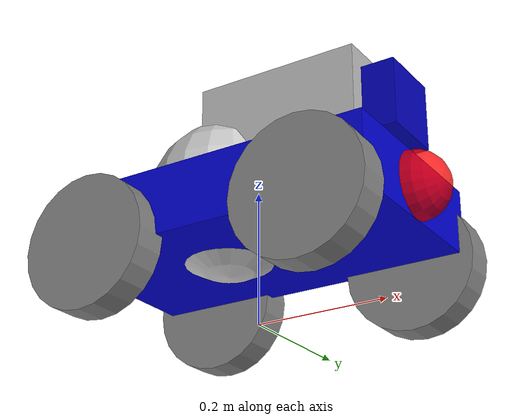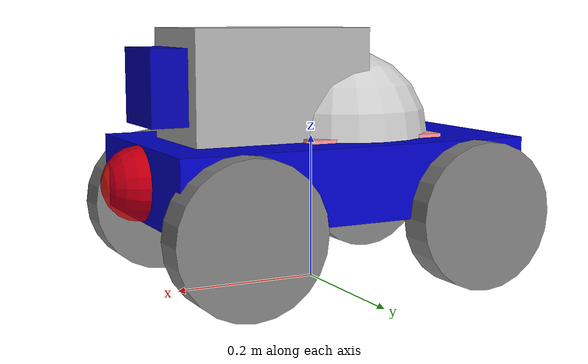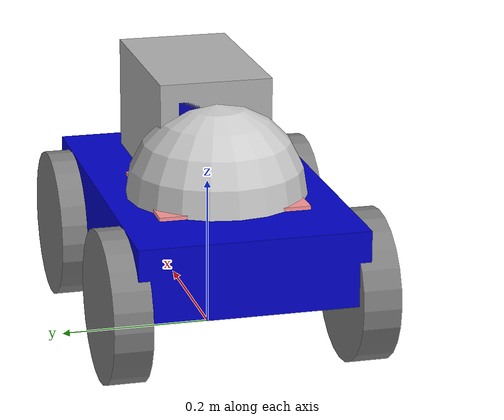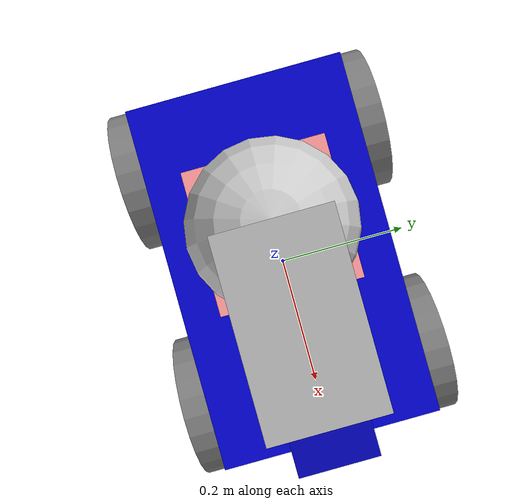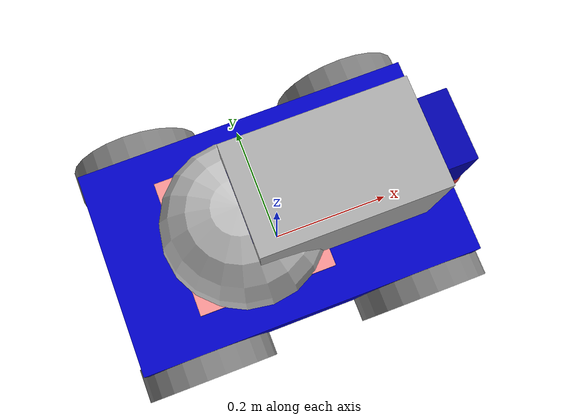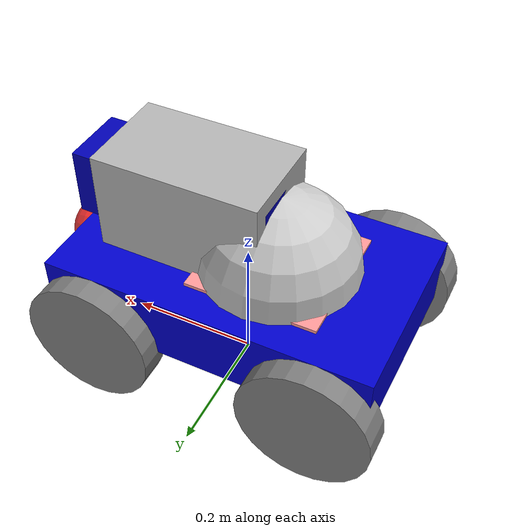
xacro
<?xml version="1.0"?>
<robot xmlns:xacro="http://www.ros.org/wiki/xacro" name="my_robot">
  <!-- 动态定位宏文件路径 -->
  <xacro:include filename="/home/sui/livox_mid360/src/my_robot/urdf/robot_body.urdf.xacro" />
  <xacro:include filename="/home/sui/livox_mid360/src/my_robot/urdf/robot_whell.urdf.xacro"/>
  <xacro:include filename="/home/sui/livox_mid360/src/my_robot/urdf/robot_arm_base.urdf.xacro"/>
  <xacro:include filename="/home/sui/livox_mid360/src/my_robot/urdf/robot_arm_1.urdf.xacro" />
  <xacro:include filename="/home/sui/livox_mid360/src/my_robot/urdf/sphere.urdf.xacro" />
  <xacro:include filename="/home/sui/livox_mid360/src/my_robot/urdf/robot_arm_2.urdf.xacro"/>
  <xacro:include filename="/home/sui/livox_mid360/src/my_robot/urdf/lader.urdf.xacro"/>

  <!-- 实例化机器人并传入参数 -->
  <xacro:rectangle_robot
      robot_name="base_link"
      length_para="0.5"
      width_para="0.3"
      height_para="0.1"
      mass_para="2.0"
  />

    <!-- 安装1左轮 -->
    <xacro:wheel_module
    radius="0.05"
    name="left_wheel1"
    width="0.03"
    parent_link="base_link"
     >

    <origin xyz="0.17 0.16 -0.05" rpy="0 0 0"/>
    </xacro:wheel_module>

    <!-- 安装2左轮 -->
    <xacro:wheel_module
    radius="0.05"
    name="left_wheel2"
    width="0.03"
    parent_link="base_link"
     >

    <origin xyz="-0.17 0.16 -0.05" rpy="0 0 0"/>
    </xacro:wheel_module>

    <!-- 安装1右边轮 -->
    <xacro:wheel_module
    radius="0.05"
    name="right_wheel1"
    width="0.03"
    parent_link="base_link"
     >

    <origin xyz="0.17 -0.16 -0.05" rpy="0 0 0"/>
    </xacro:wheel_module>

    <!-- 安装2右轮 -->
    <xacro:wheel_module
    radius="0.05"
    name="right_wheel2"
    width="0.03"
    parent_link="base_link"
    >
    <origin xyz="-0.17 -0.16 -0.05" rpy="0 0 0"/>
    </xacro:wheel_module>

    <!--安装机械臂底座  -->
     <xacro:fixed_square_module
      module_name="arm_base"
      side_length="0.2"
      height="0.01"
      parent="base_link">
      <origin xyz="-0.05 0 0.05" rpy="0 0 0"/>
    </xacro:fixed_square_module>

  <xacro:sphere_link name="marker" parent="arm_base" radius="0.12">
    <origin xyz="0 0 0" rpy="0 0 0" />
  </xacro:sphere_link>

   <!-- 安装机械臂下臂 -->
  <xacro:square_base_pillar name="arm1" base_length="0.15" height="0.25" parent_link="marker">
    <origin xyz="0 0 0.075" rpy="0 1.5708 0" />
  </xacro:square_base_pillar>

  <!-- name parent height base_side *origin color_rgba:=0.7 0.7 0.7 1" -->
  <xacro:square_base_box name="arm2" parent="arm1" height="0.3" base_side="0.1" >  <!--拉伸最长为0.2-->
    <origin xyz="0 0 0" rpy="0 0.0 0"/>
  </xacro:square_base_box>

  <xacro:sphere_radar name="lader" radius="0.05" parent="base_link">
    <origin xyz="0.25 0 0" rpy="0 1.5708 0"/>  <!-- 安装位置示例 -->
  </xacro:sphere_radar>
</robot>

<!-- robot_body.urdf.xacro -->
<robot xmlns:xacro="http://www.ros.org/wiki/xacro">
  <xacro:macro name="rectangle_robot" params="robot_name length_para:=0.2 width_para:=0.05 height_para:=0.03 mass_para:=0.5">

    <!-- 尺寸参数（支持外部传入） -->
    <xacro:property name="length" value="${length_para}" />
    <xacro:property name="width"  value="${width_para}" />
    <xacro:property name="height" value="${height_para}" />
    <xacro:property name="mass"   value="${mass_para}" />

    <link name="foot_footprint"/>

    <!-- 基础连杆（名称动态生成） -->
    <link name="${robot_name}">
      <!-- 视觉外观 -->
      <visual>
        <geometry>
          <box size="${length_para} ${width_para} ${height_para}"/>
        </geometry>

        <material name="blue">
          <color rgba="0 0 0.8 1"/>
        </material>
      </visual>

       <!-- 碰撞属性（必须与visual几何形状一致） -->
      <collision>
        <geometry>
          <box size="${length} ${width} ${height}"/>
        </geometry>
        <origin xyz="0 0 0" rpy="0 0 0"/>
        <!-- Gazebo仿真时碰撞检测会使用此属性 -->
      </collision>

      <!-- 精确惯性矩阵 -->
      <inertial>
        <mass value="${mass_para}"/>
        <inertia
          ixx="${mass_para*(height_para*height_para + length_para*length_para)/12}"
          ixy="0"
          ixz="0"
          iyy="${mass_para*(width_para*width_para + length_para*length_para)/12}"
          iyz="0"
          izz="${mass_para*(width_para*width_para + length_para*length_para)/12}"/>
      </inertial>
    </link>

    <!-- 连接虚拟部件 -->
    <joint name="${robot_name}_to_foot_joint_name" type="fixed">
      <origin xyz="0.0 0.0 0.15" rpy="0.0 0.0 0.0"/>
      <parent link="foot_footprint"/>
      <child link="${robot_name}"/>
    </joint>

     <!-- Gazebo颜色配置（可选） -->
    <gazebo reference="${robot_name}">
      <material>Gazebo/Blue</material>
    </gazebo>

</xacro:macro>
</robot>

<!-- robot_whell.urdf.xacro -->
<robot xmlns:xacro="http://www.ros.org/wiki/xacro">
  <xacro:macro name="wheel_module" params="radius name width parent_link *origin">
    <link name="${name}">
      <visual>
        <origin xyz="0 0 0" rpy="${math.pi/2} 0 0"/>

        <geometry>
          <cylinder radius="0.1" length="0.05"/>  <!-- 添加具体参数 -->
        </geometry>

        <material name="gray">
          <color rgba="0.5 0.5 0.5 1"/> <!-- 补充颜色定义 -->
        </material>

      </visual>

      <!-- 添加的碰撞属性（与visual几何形状一致） -->
      <collision>
        <origin xyz="0 0 0" rpy="${math.pi/2} 0 0"/>
        <geometry>
          <cylinder radius="0.1" length="0.05"/>
        </geometry>
      </collision>

      <!-- 添加的惯性矩阵（圆柱体公式） -->
      <inertial>
        <mass value="0.5"/>  <!-- 默认质量，建议通过参数传入 -->
        <inertia
          ixx="${0.5*(3 * 0.1 * 0.1 + 0.05 * 0.05)/12}"
          ixy="0"
          ixz="0"
          iyy="${0.5*(3 * 0.1 * 0.1 + 0.05 * 0.05)/12}"
          iyz="0"
          izz="${0.5 * 0.1 * 0.1/2}"/>
        <origin xyz="0 0 0" rpy="0 0 0"/>
      </inertial>
    </link>

    <joint name="${name}_joint" type="continuous">
      <parent link="${parent_link}"/>
      <child link="${name}"/>
      <xacro:insert_block name="origin"/>
      <axis xyz="0 1 0"/>
    </joint>

    <!-- Gazebo颜色配置（必须添加否则Gazebo中无颜色） -->
    <gazebo reference="${name}">
      <material>Gazebo/Grey</material>
    </gazebo>

  </xacro:macro>
</robot>

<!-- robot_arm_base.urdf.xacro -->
<robot xmlns:xacro="http://www.ros.org/wiki/xacro">

  <!-- 定义正方形模块的宏 -->
  <xacro:macro name="fixed_square_module" params="module_name side_length height parent *origin">
    <!-- 1. 定义正方形连杆(link) -->
    <link name="${module_name}">
      <visual>

        <geometry>
          <box size="${side_length} ${side_length} ${height}"/>
        </geometry>

        <material name="light_red">
          <color rgba="1 0.6 0.6 1"/>
        </material>

      </visual>

      <!-- 添加的碰撞属性（与visual几何形状一致） -->
      <collision>
        <geometry>
          <box size="${side_length} ${side_length} ${height}"/>
        </geometry>
        <origin xyz="0 0 0" rpy="0 0 0"/>
      </collision>

      <!-- 添加的惯性矩阵（长方体公式） -->
      <inertial>
        <mass value="0.5"/>  <!-- 默认质量，建议后续通过参数传入 -->
        <inertia
          ixx="${0.5*(height*height + side_length*side_length)/12}"
          ixy="0"
          ixz="0"
          iyy="${0.5*(side_length*side_length + side_length*side_length)/12}"
          iyz="0"
          izz="${0.5*(side_length*side_length + height*height)/12}"/>
        <origin xyz="0 0 0" rpy="0 0 0"/>
      </inertial>
    </link>

      <!-- 2. 固定关节(fixed joint)连接到父坐标系 -->
    <joint name="${module_name}_fixed_joint" type="fixed">
      <!-- 通过*origin传递位置参数 -->
      <xacro:insert_block name="origin"/>
      <parent link="${parent}"/>
      <child link="${module_name}"/>
    </joint>

    <!-- Gazebo颜色配置（必须添加否则Gazebo中无颜色） -->
    <gazebo reference="${module_name}">
      <material>Gazebo/Orange</material>  <!-- 使用与RVIZ相近的橙色 -->
    </gazebo>

  </xacro:macro>
</robot>

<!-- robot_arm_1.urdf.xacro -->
<robot xmlns:xacro="http://www.ros.org/wiki/xacro">
  <!-- 定义模块宏：可参数化的正方形底长方体柱子 -->
  <xacro:macro name="square_base_pillar" params="name base_length height parent_link *origin">
    <!-- 属性定义 -->
    <xacro:property name="mass" value="1.0" /> <!-- 默认质量 -->
    <xacro:property name="color_rgba" value="0.7 0.7 0.7 1" /> <!-- 默认灰色材质 -->

    <!-- 连杆定义 -->
    <link name="${name}">
      <!-- 视觉属性 -->
      <visual>
        <geometry>
          <box size="${base_length} ${base_length} ${height}" />
        </geometry>
        <origin xyz="0 0 ${height/2}" rpy="0 0 0" />
        <material name="${name}_color">
          <color rgba="${color_rgba}" />
        </material>
      </visual>

       <!-- 添加的碰撞属性（长方体） -->
      <collision>
        <geometry>
          <box size="${base_length} ${base_length} ${height}" />
        </geometry>
        <origin xyz="0 0 ${height/2}" rpy="0 0 0" />
      </collision>

      <!-- 添加的惯性矩阵（长方体公式） -->
      <inertial>
        <mass value="${mass}"/>
        <inertia
          ixx="${mass*(height*height + base_length*base_length)/12}"
          ixy="0"
          ixz="0"
          iyy="${mass*(base_length*base_length + base_length*base_length)/12}"
          iyz="0"
          izz="${mass*(base_length*base_length + height*height)/12}"/>
        <origin xyz="0 0 ${height/2}" rpy="0 0 0"/>
      </inertial>

    </link>

    <!-- 关节定义：绕Y轴旋转（0-180度限制） -->
    <joint name="${name}_joint" type="revolute">
      <xacro:insert_block name="origin" /> <!-- 通过宏参数传递安装位置 -->
      <parent link="${parent_link}" />
      <child link="${name}" />
      <axis xyz="0 1 0" /> <!-- Y轴旋转 -->
      <limit lower="-1.5708" upper="1.5708" effort="100" velocity="1.0"/>
      <dynamics damping="0.1" />
    </joint>

     <!-- Gazebo颜色配置（必须添加否则Gazebo中无颜色） -->
    <gazebo reference="${name}">
      <material>Gazebo/Grey</material>
      <mu1>0.5</mu1>  <!-- 摩擦系数1 -->
      <mu2>0.5</mu2>  <!-- 摩擦系数2 -->
      <kp>1000000.0</kp>  <!-- 接触刚度 -->
      <kd>1000.0</kd>  <!-- 接触阻尼 -->
    </gazebo>

  </xacro:macro>
</robot>

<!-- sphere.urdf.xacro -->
<robot xmlns:xacro="http://www.ros.org/wiki/xacro">
  <!-- 定义球体宏：可参数化的球体链接与固定关节 -->
  <xacro:macro name="sphere_link" params="name parent radius *origin">
    <!-- 属性定义 -->
    <xacro:property name="mass" value="0.1" />

    <!-- 球体连杆 -->
    <link name="${name}">
      <!-- 视觉属性 -->
      <visual>
        <geometry>
          <sphere radius="${radius}" />
        </geometry>
        <origin xyz="0 0 0" rpy="0 0 0" />
        <material name="${name}_color">
          <color rgba="0.8 0.8 0.8 1" />
        </material>
      </visual>

      <!-- 添加的碰撞属性（与visual几何形状一致） -->
      <collision>
        <geometry>
          <sphere radius="${radius}" />
        </geometry>
        <origin xyz="0 0 0" rpy="0 0 0" />
      </collision>

      <!-- 添加的惯性矩阵（球体公式） -->
      <inertial>
        <mass value="${mass}"/>
        <inertia
          ixx="${2*mass*radius*radius/5}"
          ixy="0"
          ixz="0"
          iyy="${2*mass*radius*radius/5}"
          iyz="0"
          izz="${2*mass*radius*radius/5}"/>
        <origin xyz="0 0 0" rpy="0 0 0"/>
      </inertial>
    </link>

    <!-- 固定关节 -->
    <joint name="${name}_joint" type="fixed">
      <xacro:insert_block name="origin" />
      <parent link="${parent}" />
      <child link="${name}" />
    </joint>

    <!-- Gazebo颜色配置（必须添加否则Gazebo中无颜色） -->
    <gazebo reference="${name}">
      <material>Gazebo/Grey</material>
      <mu1>0.5</mu1>  <!-- 摩擦系数1 -->
      <mu2>0.5</mu2>  <!-- 摩擦系数2 -->
      <kp>1000000.0</kp>  <!-- 接触刚度 -->
      <kd>1000.0</kd>  <!-- 接触阻尼 -->
    </gazebo>

  </xacro:macro>
</robot>

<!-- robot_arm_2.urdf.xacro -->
<robot xmlns:xacro="http://www.ros.org/wiki/xacro">
  <!-- 定义可旋转和伸缩的长方体宏 -->
  <xacro:macro name="square_base_box" params="name parent height base_side *origin">
    <!-- 属性定义 -->
    <xacro:property name="mass" value="${base_side * base_side * height * 0.001}" /> <!-- 密度假设为0.001 kg/cm³ -->

    <!-- 中间连杆（用于旋转） -->
    <link name="${name}_rotation_link">
      <inertial>
        <mass value="0.001"/> <!-- 很小的质量 -->
        <inertia ixx="0.0001" ixy="0" ixz="0" iyy="0.0001" iyz="0" izz="0.0001"/>
      </inertial>
    </link>

    <!-- 旋转关节（与父连杆连接） -->
    <joint name="${name}_rotation_joint" type="revolute">
      <xacro:insert_block name="origin"/> <!-- 通过宏参数传递安装位置 -->
      <parent link="${parent}"/>
      <child link="${name}_rotation_link"/>
      <axis xyz="0 0 1"/> <!-- 绕Z轴旋转 -->
      <limit effort="100" velocity="0.5" lower="-3.14159" upper="3.14159"/> <!-- 可自由旋转 -->
      <dynamics damping="0.1"/>
    </joint>

    <!-- 长方体连杆（实际的可伸缩部分） -->
    <link name="${name}">
      <!-- 视觉属性 -->
      <visual>
        <geometry>
          <box size="${base_side} ${base_side} ${height}"/> <!-- 正方形底，高度可调 -->
        </geometry>
        <origin xyz="0 0 ${height/2}" rpy="0 0 0"/> <!-- 原点位于几何中心 -->
        <material name="${parent}_box_color">
          <color rgba="0 0 0.7 1"/>
        </material>
      </visual>

       <!-- 添加的碰撞属性（长方体） -->
      <collision>
        <geometry>
          <box size="${base_side} ${base_side} ${height}"/>
        </geometry>
        <origin xyz="0 0 ${height/2}" rpy="0 0 0"/>
      </collision>

      <!-- 添加的惯性矩阵（长方体公式） -->
      <inertial>
        <mass value="${mass}"/>
        <inertia
          ixx="${mass*(height*height + base_side*base_side)/12}"
          ixy="0"
          ixz="0"
          iyy="${mass*(base_side*base_side + base_side*base_side)/12}"
          iyz="0"
          izz="${mass*(base_side*base_side + height*height)/12}"/>
        <origin xyz="0 0 ${height/2}" rpy="0 0 0"/>
      </inertial>
    </link>

    <!-- 棱柱关节（沿Z轴伸缩） -->
    <joint name="${name}_prismatic_joint" type="prismatic">
      <parent link="${name}_rotation_link"/>
      <child link="${name}"/>
      <origin xyz="0 0 0" rpy="0 0 0"/> <!-- 连接到旋转连杆 -->
      <axis xyz="0 0 1"/> <!-- Z轴方向 -->
      <limit effort="100" velocity="0.5" lower="0" upper="0.2"/> <!-- 伸缩范围为0到高度 -->
      <dynamics damping="0.1"/>
    </joint>

    <!-- Gazebo颜色配置（必须添加否则Gazebo中无颜色） -->
    <gazebo reference="${name}">
      <material>Gazebo/Blue</material>
    </gazebo>
    <gazebo reference="${name}_rotation_link">
      <material>Gazebo/Grey</material>
    </gazebo>
  </xacro:macro>
</robot>

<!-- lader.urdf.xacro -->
<robot xmlns:xacro="http://www.ros.org/wiki/xacro">

  <!-- 定义雷达宏 -->
  <xacro:macro name="sphere_radar" params="name radius parent *origin">
    <!-- 雷达连杆 -->
    <link name="${name}">
      <visual>
        <geometry>
          <sphere radius="${radius}"/>  <!-- 使用传入的半径参数 -->
        </geometry>
        <origin xyz="0 0 0" rpy="0 0 0"/>
        <material name="blue">
          <color rgba="1.0 0 0 0.8"/>  <!-- 半透明蓝色材质 -->
        </material>
      </visual>

      <!-- 添加的碰撞属性（与visual几何形状一致） -->
      <collision>
        <geometry>
          <sphere radius="${radius}"/>
        </geometry>
        <origin xyz="0 0 0" rpy="0 0 0"/>
      </collision>

      <!-- 添加的惯性矩阵（球体公式） -->
      <inertial>
        <mass value="0.1"/>  <!-- 默认质量，建议通过参数传入 -->
        <inertia
          ixx="${0.1 * 2*radius*radius/5}"
          ixy="0"
          ixz="0"
          iyy="${0.1 * 2*radius*radius/5}"
          iyz="0"
          izz="${0.1 * 2*radius*radius/5}"/>
        <origin xyz="0 0 0" rpy="0 0 0"/>
      </inertial>
    </link>

    <!-- 固定关节连接父连杆 -->
    <joint name="radar_joint" type="fixed">
      <xacro:insert_block name="origin"/>  <!-- 通过宏参数传递安装位置 -->
      <parent link="${parent}"/>  <!-- 指定父连杆名称 -->
      <child link="${name}"/>
    </joint>

     <!-- Gazebo配置（Livox Mid360专用） -->
    <gazebo reference="${name}">
      <material>Gazebo/Red</material>

      <!-- Livox雷达传感器插件 -->
      <sensor name="${name}_lidar" type="gpu_ray">
        <pose>0 0 0 0 0 0</pose>
        <visualize>false</visualize>
        <update_rate>10</update_rate>
        <ray>
          <scan>
            <horizontal>
              <samples>100</samples>  <!-- 水平100个采样点 -->
              <resolution>1</resolution>
              <min_angle>0</min_angle>
              <max_angle>${2*pi}</max_angle>  <!-- 360°水平FOV -->
            </horizontal>
            <vertical>
              <samples>360</samples>  <!-- 垂直360个采样点 -->
              <resolution>1</resolution>
              <min_angle>${-7.22*pi/180}</min_angle>
              <max_angle>${55.22*pi/180}</max_angle>
            </vertical>
          </scan>
          <range>
            <min>0.1</min>  <!-- 最小探测距离0.1m -->
            <max>200.0</max>  <!-- 最大探测距离200m -->
            <resolution>0.01</resolution>
          </range>
          <noise>
            <type>gaussian</type>
            <mean>0.0</mean>
            <stddev>0.01</stddev>
          </noise>
        </ray>
        <plugin name="livox_plugin" filename="libgazebo_ros_ray_sensor.so">
          <ros>
            <namespace>/livox</namespace>
            <remapping>~/out:=mid360</remapping>
          </ros>
          <output_type>sensor_msgs/PointCloud2</output_type>
          <frame_name>${name}</frame_name>
        </plugin>
      </sensor>

      <!-- 集成IMU（Livox Mid360实际包含IMU） -->
      <sensor name="${name}_imu" type="imu">
        <always_on>true</always_on>
        <update_rate>200</update_rate>
        <imu>
          <noise>
            <type>gaussian</type>
            <rate>
              <mean>0.0</mean>
              <stddev>0.0002</stddev>
            </rate>
            <accel>
              <mean>0.0</mean>
              <stddev>0.003</stddev>
            </accel>
          </noise>
        </imu>
        <plugin name="imu_plugin" filename="libgazebo_ros_imu_sensor.so">
          <topic_name>/livox/imu</topic_name>
          <body_name>${name}</body_name>
          <frame_name>${name}_imu</frame_name>
        </plugin>
      </sensor>
    </gazebo>
  </xacro:macro>
</robot>
